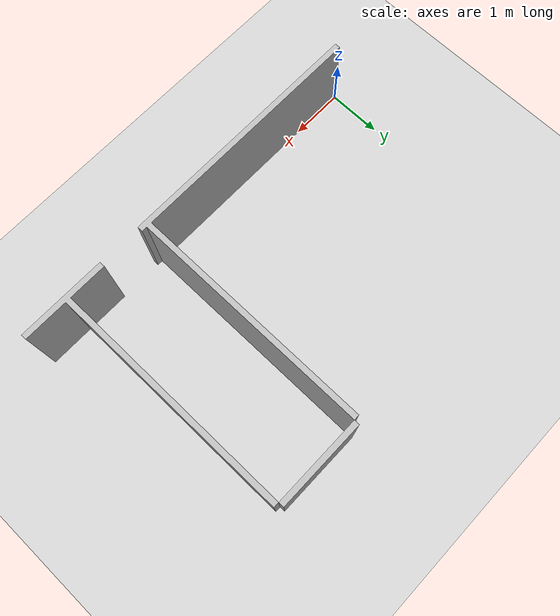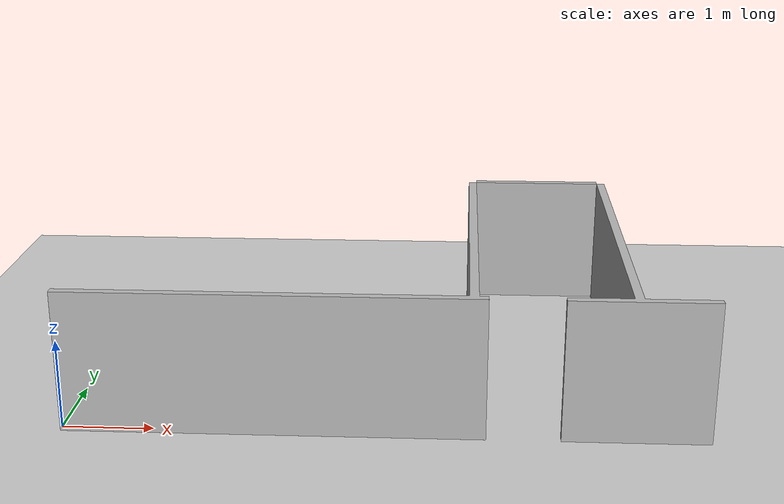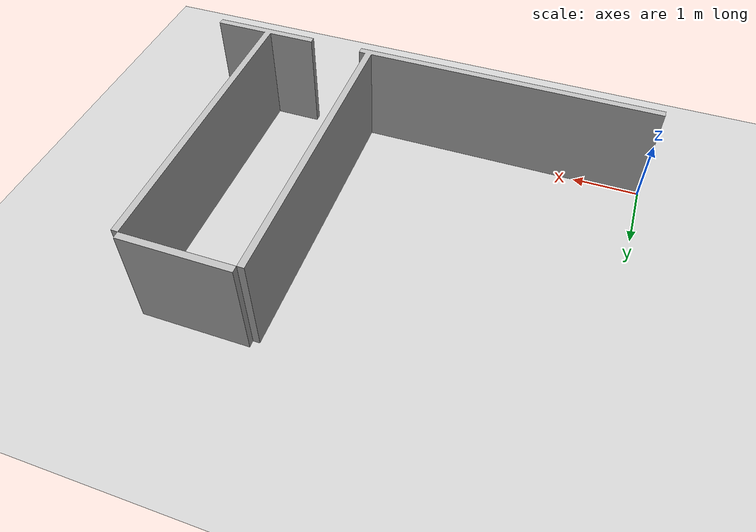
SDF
<sdf version="1.7">
 <world name="default">
  <light name="sun" type="directional">
   <pose>0 0 10 0 -0 0</pose>
   <diffuse>0.8 0.8 0.8 1</diffuse>
   <specular>0.2 0.2 0.2 1</specular>
   <attenuation>
    <range>1000</range>
    <constant>0.9</constant>
    <linear>0.01</linear>
    <quadratic>0.001</quadratic>
   </attenuation>
   <direction>-0.5 0.1 -0.9</direction>
   <spot><inner_angle>0</inner_angle><outer_angle>0</outer_angle><falloff>0</falloff></spot>
  </light>
  <model name="ground_plane">
   <static>1</static>
   <link name="link">
    <collision name="collision">
     <geometry><plane><normal>0 0 1</normal><size>100 100</size></plane></geometry>
     <surface><friction><ode><mu>100</mu><mu2>50</mu2></ode></friction></surface>
    </collision>
    <visual name="visual">
     <cast_shadows>0</cast_shadows>
     <geometry><plane><normal>0 0 1</normal><size>100 100</size></plane></geometry>
     <material>
      <script><uri>file://media/materials/scripts/gazebo.material</uri><name>Gazebo/Grey</name></script>
     </material>
    </visual>
   </link>
  </model>
  <gravity>0 0 -9.8</gravity>
  <magnetic_field>6e-06 2.3e-05 -4.2e-05</magnetic_field>
  <atmosphere type="adiabatic"/>
  <physics type="ode">
   <max_step_size>0.001</max_step_size>
   <real_time_factor>1</real_time_factor>
   <real_time_update_rate>1000</real_time_update_rate>
  </physics>
  <scene><ambient>0.4 0.4 0.4 1</ambient><background>0.7 0.7 0.7 1</background><shadows>1</shadows></scene>
  <audio><device>default</device></audio>
  <spherical_coordinates>
   <surface_model>EARTH_WGS84</surface_model>
   <latitude_deg>0</latitude_deg>
   <longitude_deg>0</longitude_deg>
   <elevation>0</elevation>
   <heading_deg>0</heading_deg>
  </spherical_coordinates>
  <model name="workshop_map_3">
   <link name="map_link">
    <inertial>
     <pose>4.55542 1.57651 0.8 0 -0 0</pose>
     <mass>2656</mass>
     <inertia>
      <ixx>5611.23</ixx>
      <ixy>-1719.52</ixy>
      <ixz>1.41532e-12</ixz>
      <iyy>3638.57</iyy>
      <iyz>7.65649e-13</iyz>
      <izz>8116.57</izz>
     </inertia>
    </inertial>
    <collision name="map_link_collision">
     <geometry>
      <mesh>
       <scale>1 1 1</scale>
       <uri>file:////home/fang/coop_ws/install/my_robot_description/share/my_robot_description/meshes/map_3/map_link.STL</uri>
      </mesh>
     </geometry>
    </collision>
    <visual name="map_link_visual">
     <geometry>
      <mesh>
       <scale>1 1 1</scale>
       <uri>file:////home/fang/coop_ws/install/my_robot_description/share/my_robot_description/meshes/map_3/map_link.STL</uri>
      </mesh>
     </geometry>
    </visual>
   </link>
   <pose>-0.000256 0.000259 3e-06 1e-06 2e-06 -5.7e-05</pose>
  </model>
 </world>
</sdf>
